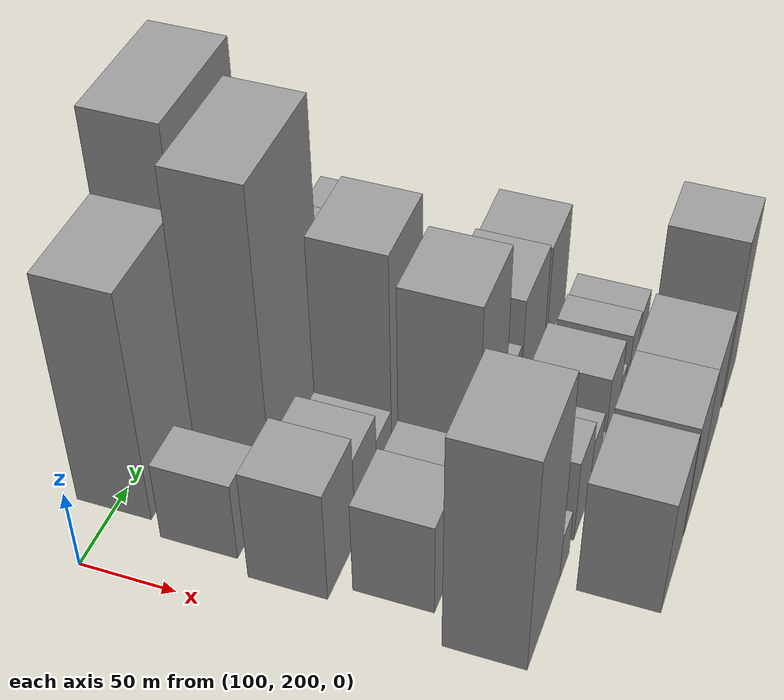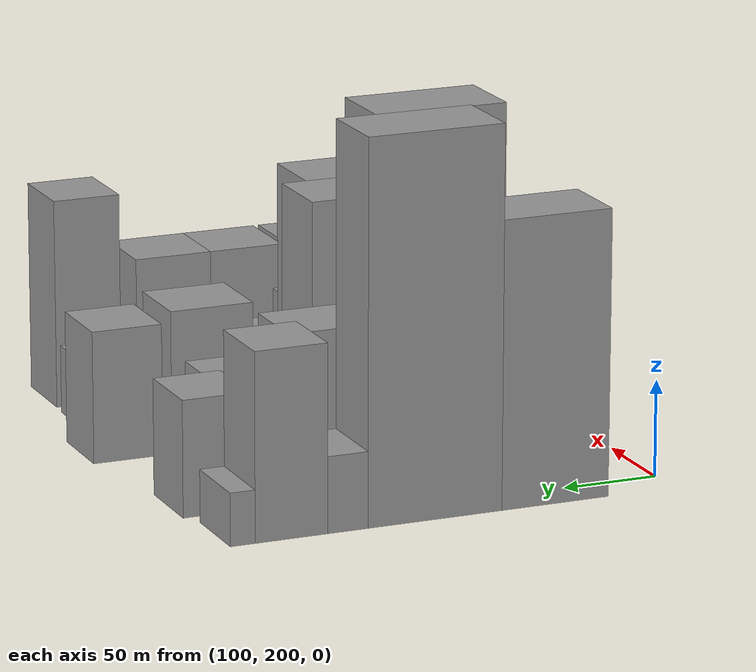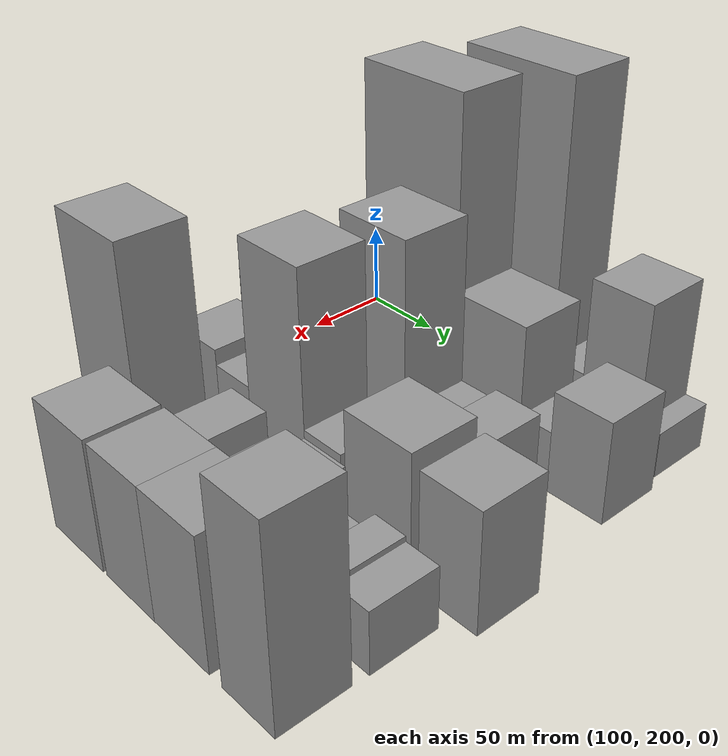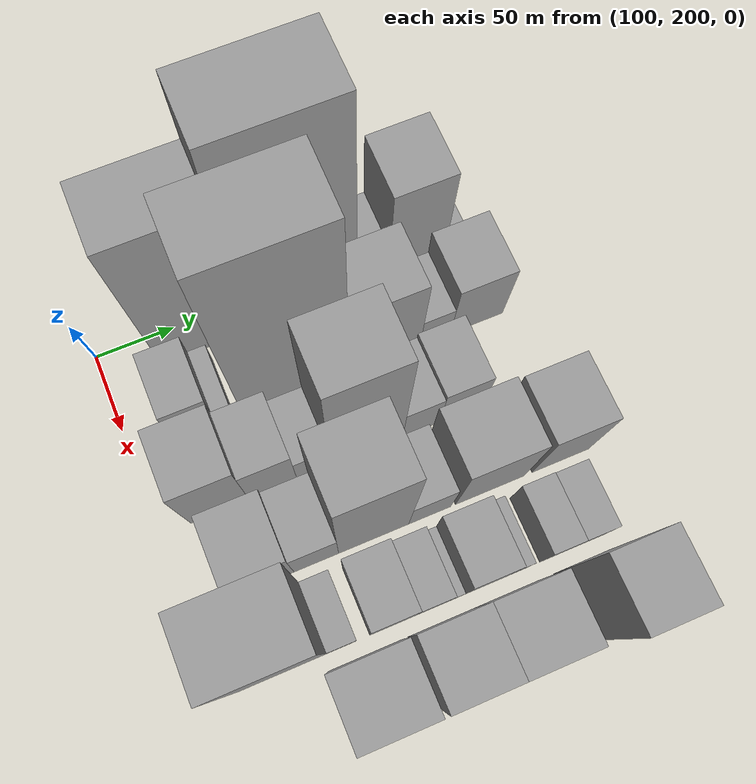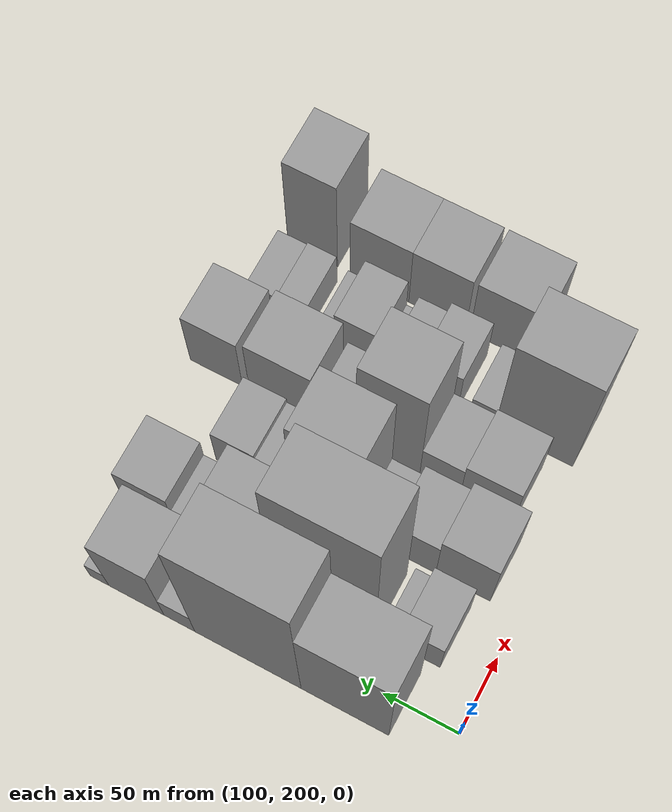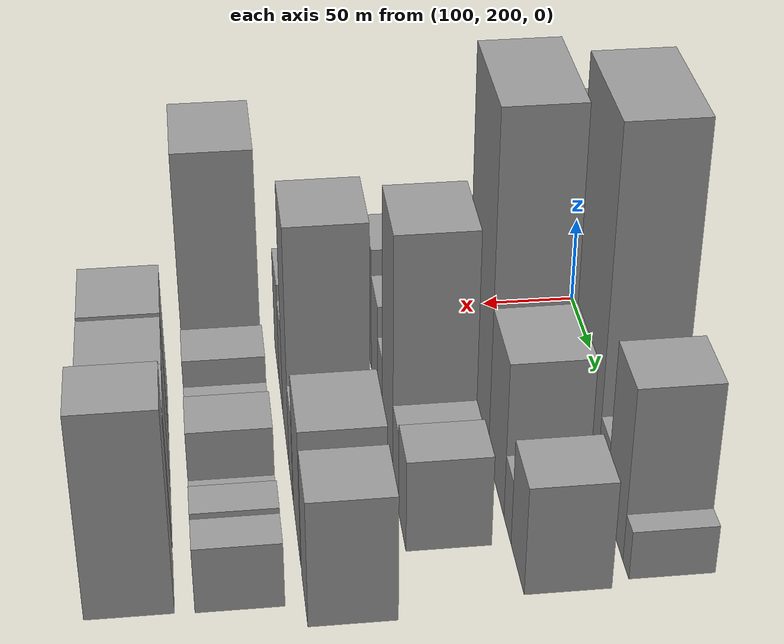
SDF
<sdf version="1.6">
 <world name="default">
  <model name="building_29">
   <static>1</static>
   <pose>100.0000 264.2516 0 0.000000 0.000000 0.000000</pose>
   <link name="link">
    <pose>0 0 73.50 0 0 0</pose>
    <collision name="collision"><geometry><box><size>40.0000 57.5324 147.0000</size></box></geometry></collision>
    <visual name="visual">
     <cast_shadows>0</cast_shadows>
     <geometry><box><size>40.0000 57.5324 147.0000</size></box></geometry>
     <material>
      <script>
       <uri>model://grey_wall/materials/scripts</uri>
       <uri>model://grey_wall/materials/textures</uri>
       <name>vrc/grey_wall</name>
      </script>
     </material>
    </visual>
   </link>
  </model>
  <model name="building_30">
   <static>1</static>
   <pose>100.0000 328.5669 0 0.000000 0.000000 0.000000</pose>
   <link name="link">
    <pose>0 0 97.50 0 0 0</pose>
    <collision name="collision"><geometry><box><size>40.0000 71.0983 195.0000</size></box></geometry></collision>
    <visual name="visual">
     <cast_shadows>0</cast_shadows>
     <geometry><box><size>40.0000 71.0983 195.0000</size></box></geometry>
     <material>
      <script>
       <uri>model://grey_wall/materials/scripts</uri>
       <uri>model://grey_wall/materials/textures</uri>
       <name>vrc/grey_wall</name>
      </script>
     </material>
    </visual>
   </link>
  </model>
  <model name="building_31">
   <static>1</static>
   <pose>100.0000 374.6300 0 0.000000 0.000000 0.000000</pose>
   <link name="link">
    <pose>0 0 19.50 0 0 0</pose>
    <collision name="collision"><geometry><box><size>40.0000 21.0278 39.0000</size></box></geometry></collision>
    <visual name="visual">
     <cast_shadows>0</cast_shadows>
     <geometry><box><size>40.0000 21.0278 39.0000</size></box></geometry>
     <material>
      <script>
       <uri>model://grey_wall/materials/scripts</uri>
       <uri>model://grey_wall/materials/textures</uri>
       <name>vrc/grey_wall</name>
      </script>
     </material>
    </visual>
   </link>
  </model>
  <model name="building_32">
   <static>1</static>
   <pose>100.0000 404.0000 0 0.000000 0.000000 0.000000</pose>
   <link name="link">
    <pose>0 0 48.00 0 0 0</pose>
    <collision name="collision"><geometry><box><size>40.0000 37.7122 96.0000</size></box></geometry></collision>
    <visual name="visual">
     <cast_shadows>0</cast_shadows>
     <geometry><box><size>40.0000 37.7122 96.0000</size></box></geometry>
     <material>
      <script>
       <uri>model://grey_wall/materials/scripts</uri>
       <uri>model://grey_wall/materials/textures</uri>
       <name>vrc/grey_wall</name>
      </script>
     </material>
    </visual>
   </link>
  </model>
  <model name="building_33">
   <static>1</static>
   <pose>100.0000 429.2658 0 0.000000 0.000000 0.000000</pose>
   <link name="link">
    <pose>0 0 13.50 0 0 0</pose>
    <collision name="collision"><geometry><box><size>40.0000 12.8195 27.0000</size></box></geometry></collision>
    <visual name="visual">
     <cast_shadows>0</cast_shadows>
     <geometry><box><size>40.0000 12.8195 27.0000</size></box></geometry>
     <material>
      <script>
       <uri>model://grey_wall/materials/scripts</uri>
       <uri>model://grey_wall/materials/textures</uri>
       <name>vrc/grey_wall</name>
      </script>
     </material>
    </visual>
   </link>
  </model>
  <model name="building_77">
   <static>1</static>
   <pose>149.0000 240.6200 0 0.000000 0.000000 0.000000</pose>
   <link name="link">
    <pose>0 0 25.50 0 0 0</pose>
    <collision name="collision"><geometry><box><size>40.0000 26.6417 51.0000</size></box></geometry></collision>
    <visual name="visual">
     <cast_shadows>0</cast_shadows>
     <geometry><box><size>40.0000 26.6417 51.0000</size></box></geometry>
     <material>
      <script>
       <uri>model://grey_wall/materials/scripts</uri>
       <uri>model://grey_wall/materials/textures</uri>
       <name>vrc/grey_wall</name>
      </script>
     </material>
    </visual>
   </link>
  </model>
  <model name="building_78">
   <static>1</static>
   <pose>149.0000 259.4497 0 0.000000 0.000000 0.000000</pose>
   <link name="link">
    <pose>0 0 13.50 0 0 0</pose>
    <collision name="collision"><geometry><box><size>40.0000 11.0177 27.0000</size></box></geometry></collision>
    <visual name="visual">
     <cast_shadows>0</cast_shadows>
     <geometry><box><size>40.0000 11.0177 27.0000</size></box></geometry>
     <material>
      <script>
       <uri>model://grey_wall/materials/scripts</uri>
       <uri>model://grey_wall/materials/textures</uri>
       <name>vrc/grey_wall</name>
      </script>
     </material>
    </visual>
   </link>
  </model>
  <model name="building_79">
   <static>1</static>
   <pose>149.0000 304.3574 0 0.000000 0.000000 0.000000</pose>
   <link name="link">
    <pose>0 0 96.00 0 0 0</pose>
    <collision name="collision"><geometry><box><size>40.0000 68.7976 192.0000</size></box></geometry></collision>
    <visual name="visual">
     <cast_shadows>0</cast_shadows>
     <geometry><box><size>40.0000 68.7976 192.0000</size></box></geometry>
     <material>
      <script>
       <uri>model://grey_wall/materials/scripts</uri>
       <uri>model://grey_wall/materials/textures</uri>
       <name>vrc/grey_wall</name>
      </script>
     </material>
    </visual>
   </link>
  </model>
  <model name="building_80">
   <static>1</static>
   <pose>149.0000 362.0281 0 0.000000 0.000000 0.000000</pose>
   <link name="link">
    <pose>0 0 43.50 0 0 0</pose>
    <collision name="collision"><geometry><box><size>40.0000 46.5438 87.0000</size></box></geometry></collision>
    <visual name="visual">
     <cast_shadows>0</cast_shadows>
     <geometry><box><size>40.0000 46.5438 87.0000</size></box></geometry>
     <material>
      <script>
       <uri>model://grey_wall/materials/scripts</uri>
       <uri>model://grey_wall/materials/textures</uri>
       <name>vrc/grey_wall</name>
      </script>
     </material>
    </visual>
   </link>
  </model>
  <model name="building_81">
   <static>1</static>
   <pose>149.0000 395.4197 0 0.000000 0.000000 0.000000</pose>
   <link name="link">
    <pose>0 0 18.00 0 0 0</pose>
    <collision name="collision"><geometry><box><size>40.0000 20.2394 36.0000</size></box></geometry></collision>
    <visual name="visual">
     <cast_shadows>0</cast_shadows>
     <geometry><box><size>40.0000 20.2394 36.0000</size></box></geometry>
     <material>
      <script>
       <uri>model://grey_wall/materials/scripts</uri>
       <uri>model://grey_wall/materials/textures</uri>
       <name>vrc/grey_wall</name>
      </script>
     </material>
    </visual>
   </link>
  </model>
  <model name="building_82">
   <static>1</static>
   <pose>149.0000 423.2424 0 0.000000 0.000000 0.000000</pose>
   <link name="link">
    <pose>0 0 30.00 0 0 0</pose>
    <collision name="collision"><geometry><box><size>40.0000 35.4060 60.0000</size></box></geometry></collision>
    <visual name="visual">
     <cast_shadows>0</cast_shadows>
     <geometry><box><size>40.0000 35.4060 60.0000</size></box></geometry>
     <material>
      <script>
       <uri>model://grey_wall/materials/scripts</uri>
       <uri>model://grey_wall/materials/textures</uri>
       <name>vrc/grey_wall</name>
      </script>
     </material>
    </visual>
   </link>
  </model>
  <model name="building_129">
   <static>1</static>
   <pose>198.0000 237.0880 0 0.000000 0.000000 0.000000</pose>
   <link name="link">
    <pose>0 0 36.00 0 0 0</pose>
    <collision name="collision"><geometry><box><size>40.0000 36.1674 72.0000</size></box></geometry></collision>
    <visual name="visual">
     <cast_shadows>0</cast_shadows>
     <geometry><box><size>40.0000 36.1674 72.0000</size></box></geometry>
     <material>
      <script>
       <uri>model://grey_wall/materials/scripts</uri>
       <uri>model://grey_wall/materials/textures</uri>
       <name>vrc/grey_wall</name>
      </script>
     </material>
    </visual>
   </link>
  </model>
  <model name="building_130">
   <static>1</static>
   <pose>198.0000 270.2489 0 0.000000 0.000000 0.000000</pose>
   <link name="link">
    <pose>0 0 28.50 0 0 0</pose>
    <collision name="collision"><geometry><box><size>40.0000 30.1544 57.0000</size></box></geometry></collision>
    <visual name="visual">
     <cast_shadows>0</cast_shadows>
     <geometry><box><size>40.0000 30.1544 57.0000</size></box></geometry>
     <material>
      <script>
       <uri>model://grey_wall/materials/scripts</uri>
       <uri>model://grey_wall/materials/textures</uri>
       <name>vrc/grey_wall</name>
      </script>
     </material>
    </visual>
   </link>
  </model>
  <model name="building_131">
   <static>1</static>
   <pose>198.0000 295.8630 0 0.000000 0.000000 0.000000</pose>
   <link name="link">
    <pose>0 0 19.50 0 0 0</pose>
    <collision name="collision"><geometry><box><size>40.0000 21.0737 39.0000</size></box></geometry></collision>
    <visual name="visual">
     <cast_shadows>0</cast_shadows>
     <geometry><box><size>40.0000 21.0737 39.0000</size></box></geometry>
     <material>
      <script>
       <uri>model://grey_wall/materials/scripts</uri>
       <uri>model://grey_wall/materials/textures</uri>
       <name>vrc/grey_wall</name>
      </script>
     </material>
    </visual>
   </link>
  </model>
  <model name="building_132">
   <static>1</static>
   <pose>198.0000 329.4853 0 0.000000 0.000000 0.000000</pose>
   <link name="link">
    <pose>0 0 69.00 0 0 0</pose>
    <collision name="collision"><geometry><box><size>40.0000 46.1709 138.0000</size></box></geometry></collision>
    <visual name="visual">
     <cast_shadows>0</cast_shadows>
     <geometry><box><size>40.0000 46.1709 138.0000</size></box></geometry>
     <material>
      <script>
       <uri>model://grey_wall/materials/scripts</uri>
       <uri>model://grey_wall/materials/textures</uri>
       <name>vrc/grey_wall</name>
      </script>
     </material>
    </visual>
   </link>
  </model>
  <model name="building_133">
   <static>1</static>
   <pose>198.0000 364.4272 0 0.000000 0.000000 0.000000</pose>
   <link name="link">
    <pose>0 0 22.50 0 0 0</pose>
    <collision name="collision"><geometry><box><size>40.0000 23.7129 45.0000</size></box></geometry></collision>
    <visual name="visual">
     <cast_shadows>0</cast_shadows>
     <geometry><box><size>40.0000 23.7129 45.0000</size></box></geometry>
     <material>
      <script>
       <uri>model://grey_wall/materials/scripts</uri>
       <uri>model://grey_wall/materials/textures</uri>
       <name>vrc/grey_wall</name>
      </script>
     </material>
    </visual>
   </link>
  </model>
  <model name="building_134">
   <static>1</static>
   <pose>198.0000 390.7256 0 0.000000 0.000000 0.000000</pose>
   <link name="link">
    <pose>0 0 25.50 0 0 0</pose>
    <collision name="collision"><geometry><box><size>40.0000 28.8837 51.0000</size></box></geometry></collision>
    <visual name="visual">
     <cast_shadows>0</cast_shadows>
     <geometry><box><size>40.0000 28.8837 51.0000</size></box></geometry>
     <material>
      <script>
       <uri>model://grey_wall/materials/scripts</uri>
       <uri>model://grey_wall/materials/textures</uri>
       <name>vrc/grey_wall</name>
      </script>
     </material>
    </visual>
   </link>
  </model>
  <model name="building_170">
   <static>1</static>
   <pose>247.0000 245.8901 0 0.000000 0.000000 0.000000</pose>
   <link name="link">
    <pose>0 0 30.00 0 0 0</pose>
    <collision name="collision"><geometry><box><size>40.0000 35.9656 60.0000</size></box></geometry></collision>
    <visual name="visual">
     <cast_shadows>0</cast_shadows>
     <geometry><box><size>40.0000 35.9656 60.0000</size></box></geometry>
     <material>
      <script>
       <uri>model://grey_wall/materials/scripts</uri>
       <uri>model://grey_wall/materials/textures</uri>
       <name>vrc/grey_wall</name>
      </script>
     </material>
    </visual>
   </link>
  </model>
  <model name="building_171">
   <static>1</static>
   <pose>247.0000 277.6153 0 0.000000 0.000000 0.000000</pose>
   <link name="link">
    <pose>0 0 25.50 0 0 0</pose>
    <collision name="collision"><geometry><box><size>40.0000 27.4848 51.0000</size></box></geometry></collision>
    <visual name="visual">
     <cast_shadows>0</cast_shadows>
     <geometry><box><size>40.0000 27.4848 51.0000</size></box></geometry>
     <material>
      <script>
       <uri>model://grey_wall/materials/scripts</uri>
       <uri>model://grey_wall/materials/textures</uri>
       <name>vrc/grey_wall</name>
      </script>
     </material>
    </visual>
   </link>
  </model>
  <model name="building_172">
   <static>1</static>
   <pose>247.0000 313.2249 0 0.000000 0.000000 0.000000</pose>
   <link name="link">
    <pose>0 0 67.50 0 0 0</pose>
    <collision name="collision"><geometry><box><size>40.0000 43.7345 135.0000</size></box></geometry></collision>
    <visual name="visual">
     <cast_shadows>0</cast_shadows>
     <geometry><box><size>40.0000 43.7345 135.0000</size></box></geometry>
     <material>
      <script>
       <uri>model://grey_wall/materials/scripts</uri>
       <uri>model://grey_wall/materials/textures</uri>
       <name>vrc/grey_wall</name>
      </script>
     </material>
    </visual>
   </link>
  </model>
  <model name="building_173">
   <static>1</static>
   <pose>247.0000 348.4745 0 0.000000 0.000000 0.000000</pose>
   <link name="link">
    <pose>0 0 24.00 0 0 0</pose>
    <collision name="collision"><geometry><box><size>40.0000 26.7648 48.0000</size></box></geometry></collision>
    <visual name="visual">
     <cast_shadows>0</cast_shadows>
     <geometry><box><size>40.0000 26.7648 48.0000</size></box></geometry>
     <material>
      <script>
       <uri>model://grey_wall/materials/scripts</uri>
       <uri>model://grey_wall/materials/textures</uri>
       <name>vrc/grey_wall</name>
      </script>
     </material>
    </visual>
   </link>
  </model>
  <model name="building_174">
   <static>1</static>
   <pose>247.0000 387.0696 0 0.000000 0.000000 0.000000</pose>
   <link name="link">
    <pose>0 0 37.50 0 0 0</pose>
    <collision name="collision"><geometry><box><size>40.0000 44.4254 75.0000</size></box></geometry></collision>
    <visual name="visual">
     <cast_shadows>0</cast_shadows>
     <geometry><box><size>40.0000 44.4254 75.0000</size></box></geometry>
     <material>
      <script>
       <uri>model://grey_wall/materials/scripts</uri>
       <uri>model://grey_wall/materials/textures</uri>
       <name>vrc/grey_wall</name>
      </script>
     </material>
    </visual>
   </link>
  </model>
  <model name="building_175">
   <static>1</static>
   <pose>247.0000 432.8101 0 0.000000 0.000000 0.000000</pose>
   <link name="link">
    <pose>0 0 34.50 0 0 0</pose>
    <collision name="collision"><geometry><box><size>40.0000 37.0557 69.0000</size></box></geometry></collision>
    <visual name="visual">
     <cast_shadows>0</cast_shadows>
     <geometry><box><size>40.0000 37.0557 69.0000</size></box></geometry>
     <material>
      <script>
       <uri>model://grey_wall/materials/scripts</uri>
       <uri>model://grey_wall/materials/textures</uri>
       <name>vrc/grey_wall</name>
      </script>
     </material>
    </visual>
   </link>
  </model>
  <model name="building_217">
   <static>1</static>
   <pose>296.0000 238.3520 0 0.000000 0.000000 0.000000</pose>
   <link name="link">
    <pose>0 0 69.00 0 0 0</pose>
    <collision name="collision"><geometry><box><size>40.0000 53.0177 138.0000</size></box></geometry></collision>
    <visual name="visual">
     <cast_shadows>0</cast_shadows>
     <geometry><box><size>40.0000 53.0177 138.0000</size></box></geometry>
     <material>
      <script>
       <uri>model://grey_wall/materials/scripts</uri>
       <uri>model://grey_wall/materials/textures</uri>
       <name>vrc/grey_wall</name>
      </script>
     </material>
    </visual>
   </link>
  </model>
  <model name="building_218">
   <static>1</static>
   <pose>296.0000 273.4651 0 0.000000 0.000000 0.000000</pose>
   <link name="link">
    <pose>0 0 15.00 0 0 0</pose>
    <collision name="collision"><geometry><box><size>40.0000 17.2085 30.0000</size></box></geometry></collision>
    <visual name="visual">
     <cast_shadows>0</cast_shadows>
     <geometry><box><size>40.0000 17.2085 30.0000</size></box></geometry>
     <material>
      <script>
       <uri>model://grey_wall/materials/scripts</uri>
       <uri>model://grey_wall/materials/textures</uri>
       <name>vrc/grey_wall</name>
      </script>
     </material>
    </visual>
   </link>
  </model>
  <model name="building_219">
   <static>1</static>
   <pose>296.0000 304.0338 0 0.000000 0.000000 0.000000</pose>
   <link name="link">
    <pose>0 0 27.00 0 0 0</pose>
    <collision name="collision"><geometry><box><size>40.0000 27.9289 54.0000</size></box></geometry></collision>
    <visual name="visual">
     <cast_shadows>0</cast_shadows>
     <geometry><box><size>40.0000 27.9289 54.0000</size></box></geometry>
     <material>
      <script>
       <uri>model://grey_wall/materials/scripts</uri>
       <uri>model://grey_wall/materials/textures</uri>
       <name>vrc/grey_wall</name>
      </script>
     </material>
    </visual>
   </link>
  </model>
  <model name="building_220">
   <static>1</static>
   <pose>296.0000 328.6127 0 0.000000 0.000000 0.000000</pose>
   <link name="link">
    <pose>0 0 19.50 0 0 0</pose>
    <collision name="collision"><geometry><box><size>40.0000 21.2289 39.0000</size></box></geometry></collision>
    <visual name="visual">
     <cast_shadows>0</cast_shadows>
     <geometry><box><size>40.0000 21.2289 39.0000</size></box></geometry>
     <material>
      <script>
       <uri>model://grey_wall/materials/scripts</uri>
       <uri>model://grey_wall/materials/textures</uri>
       <name>vrc/grey_wall</name>
      </script>
     </material>
    </visual>
   </link>
  </model>
  <model name="building_221">
   <static>1</static>
   <pose>296.0000 343.1047 0 0.000000 0.000000 0.000000</pose>
   <link name="link">
    <pose>0 0 9.00 0 0 0</pose>
    <collision name="collision"><geometry><box><size>40.0000 7.7553 18.0000</size></box></geometry></collision>
    <visual name="visual">
     <cast_shadows>0</cast_shadows>
     <geometry><box><size>40.0000 7.7553 18.0000</size></box></geometry>
     <material>
      <script>
       <uri>model://grey_wall/materials/scripts</uri>
       <uri>model://grey_wall/materials/textures</uri>
       <name>vrc/grey_wall</name>
      </script>
     </material>
    </visual>
   </link>
  </model>
  <model name="building_222">
   <static>1</static>
   <pose>296.0000 361.5154 0 0.000000 0.000000 0.000000</pose>
   <link name="link">
    <pose>0 0 27.00 0 0 0</pose>
    <collision name="collision"><geometry><box><size>40.0000 29.0660 54.0000</size></box></geometry></collision>
    <visual name="visual">
     <cast_shadows>0</cast_shadows>
     <geometry><box><size>40.0000 29.0660 54.0000</size></box></geometry>
     <material>
      <script>
       <uri>model://grey_wall/materials/scripts</uri>
       <uri>model://grey_wall/materials/textures</uri>
       <name>vrc/grey_wall</name>
      </script>
     </material>
    </visual>
   </link>
  </model>
  <model name="building_223">
   <static>1</static>
   <pose>296.0000 381.8650 0 0.000000 0.000000 0.000000</pose>
   <link name="link">
    <pose>0 0 13.50 0 0 0</pose>
    <collision name="collision"><geometry><box><size>40.0000 11.6331 27.0000</size></box></geometry></collision>
    <visual name="visual">
     <cast_shadows>0</cast_shadows>
     <geometry><box><size>40.0000 11.6331 27.0000</size></box></geometry>
     <material>
      <script>
       <uri>model://grey_wall/materials/scripts</uri>
       <uri>model://grey_wall/materials/textures</uri>
       <name>vrc/grey_wall</name>
      </script>
     </material>
    </visual>
   </link>
  </model>
  <model name="building_224">
   <static>1</static>
   <pose>296.0000 405.6681 0 0.000000 0.000000 0.000000</pose>
   <link name="link">
    <pose>0 0 19.50 0 0 0</pose>
    <collision name="collision"><geometry><box><size>40.0000 19.9731 39.0000</size></box></geometry></collision>
    <visual name="visual">
     <cast_shadows>0</cast_shadows>
     <geometry><box><size>40.0000 19.9731 39.0000</size></box></geometry>
     <material>
      <script>
       <uri>model://grey_wall/materials/scripts</uri>
       <uri>model://grey_wall/materials/textures</uri>
       <name>vrc/grey_wall</name>
      </script>
     </material>
    </visual>
   </link>
  </model>
  <model name="building_225">
   <static>1</static>
   <pose>296.0000 426.1476 0 0.000000 0.000000 0.000000</pose>
   <link name="link">
    <pose>0 0 18.00 0 0 0</pose>
    <collision name="collision"><geometry><box><size>40.0000 20.9860 36.0000</size></box></geometry></collision>
    <visual name="visual">
     <cast_shadows>0</cast_shadows>
     <geometry><box><size>40.0000 20.9860 36.0000</size></box></geometry>
     <material>
      <script>
       <uri>model://grey_wall/materials/scripts</uri>
       <uri>model://grey_wall/materials/textures</uri>
       <name>vrc/grey_wall</name>
      </script>
     </material>
    </visual>
   </link>
  </model>
  <model name="building_269">
   <static>1</static>
   <pose>345.0000 284.2217 0 0.000000 0.000000 0.000000</pose>
   <link name="link">
    <pose>0 0 37.50 0 0 0</pose>
    <collision name="collision"><geometry><box><size>40.0000 44.4501 75.0000</size></box></geometry></collision>
    <visual name="visual">
     <cast_shadows>0</cast_shadows>
     <geometry><box><size>40.0000 44.4501 75.0000</size></box></geometry>
     <material>
      <script>
       <uri>model://grey_wall/materials/scripts</uri>
       <uri>model://grey_wall/materials/textures</uri>
       <name>vrc/grey_wall</name>
      </script>
     </material>
    </visual>
   </link>
  </model>
  <model name="building_270">
   <static>1</static>
   <pose>345.0000 329.4460 0 0.000000 0.000000 0.000000</pose>
   <link name="link">
    <pose>0 0 37.50 0 0 0</pose>
    <collision name="collision"><geometry><box><size>40.0000 39.9985 75.0000</size></box></geometry></collision>
    <visual name="visual">
     <cast_shadows>0</cast_shadows>
     <geometry><box><size>40.0000 39.9985 75.0000</size></box></geometry>
     <material>
      <script>
       <uri>model://grey_wall/materials/scripts</uri>
       <uri>model://grey_wall/materials/textures</uri>
       <name>vrc/grey_wall</name>
      </script>
     </material>
    </visual>
   </link>
  </model>
  <model name="building_271">
   <static>1</static>
   <pose>345.0000 370.3005 0 0.000000 0.000000 0.000000</pose>
   <link name="link">
    <pose>0 0 37.50 0 0 0</pose>
    <collision name="collision"><geometry><box><size>40.0000 41.7106 75.0000</size></box></geometry></collision>
    <visual name="visual">
     <cast_shadows>0</cast_shadows>
     <geometry><box><size>40.0000 41.7106 75.0000</size></box></geometry>
     <material>
      <script>
       <uri>model://grey_wall/materials/scripts</uri>
       <uri>model://grey_wall/materials/textures</uri>
       <name>vrc/grey_wall</name>
      </script>
     </material>
    </visual>
   </link>
  </model>
  <model name="building_272">
   <static>1</static>
   <pose>345.0000 418.0531 0 0.000000 0.000000 0.000000</pose>
   <link name="link">
    <pose>0 0 55.50 0 0 0</pose>
    <collision name="collision"><geometry><box><size>40.0000 35.7946 111.0000</size></box></geometry></collision>
    <visual name="visual">
     <cast_shadows>0</cast_shadows>
     <geometry><box><size>40.0000 35.7946 111.0000</size></box></geometry>
     <material>
      <script>
       <uri>model://grey_wall/materials/scripts</uri>
       <uri>model://grey_wall/materials/textures</uri>
       <name>vrc/grey_wall</name>
      </script>
     </material>
    </visual>
   </link>
  </model>
 </world>
</sdf>
